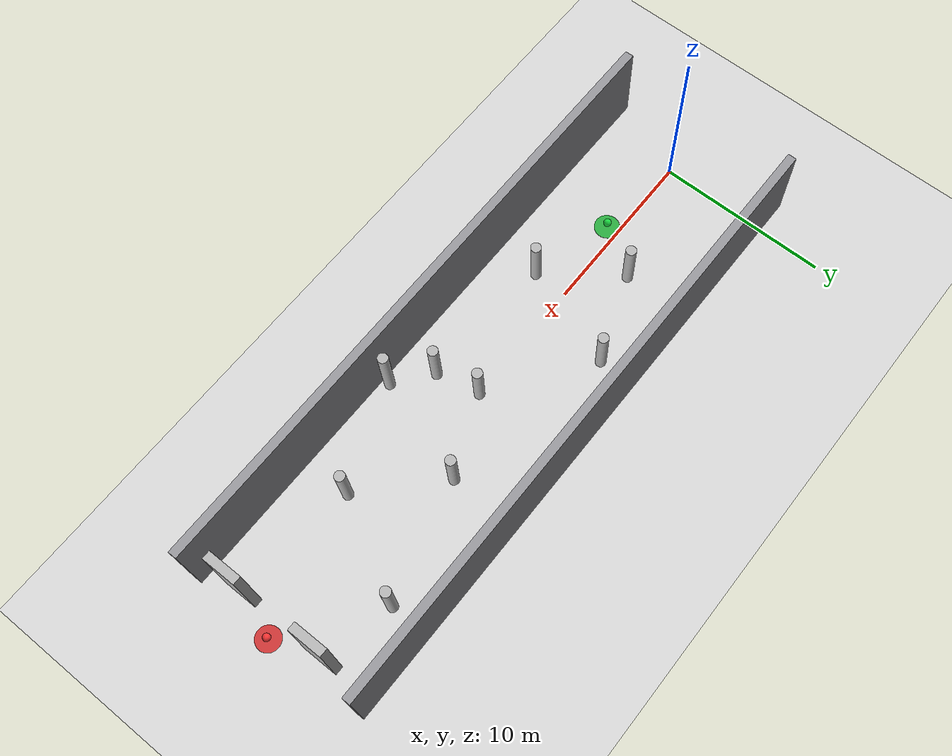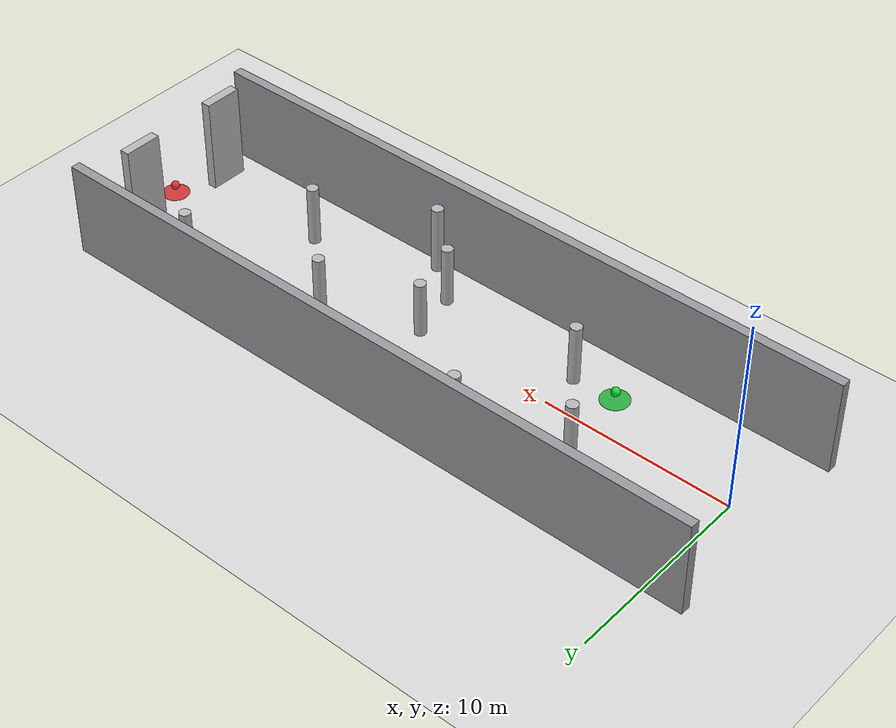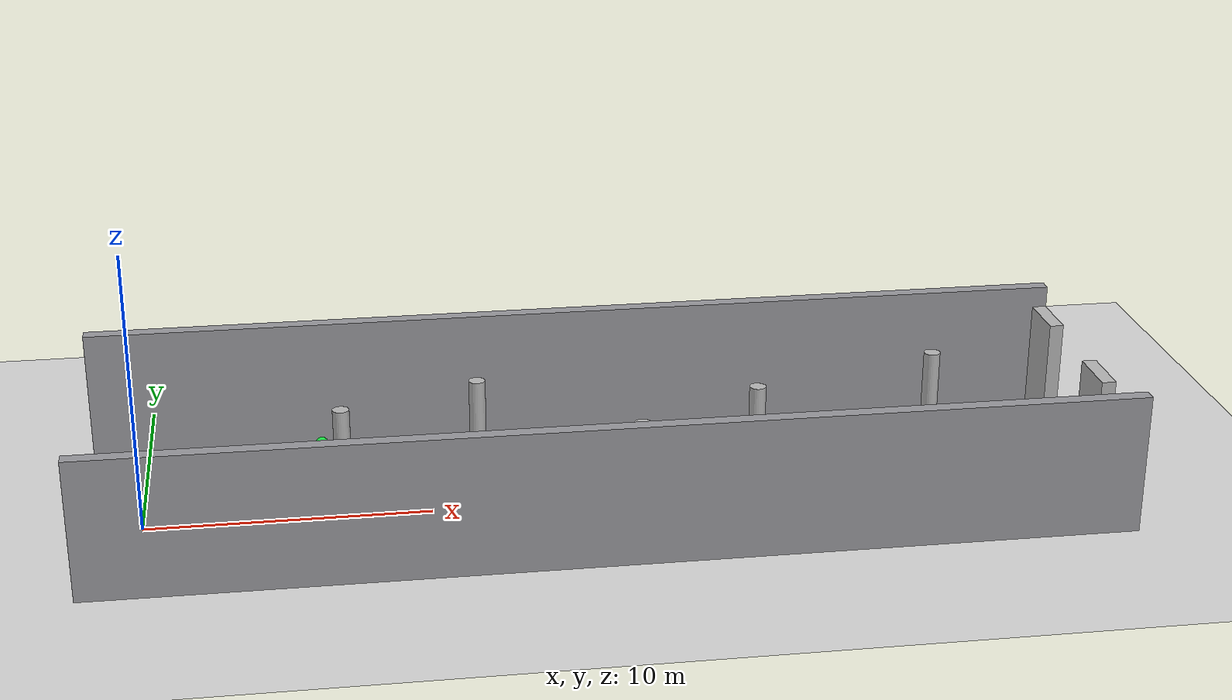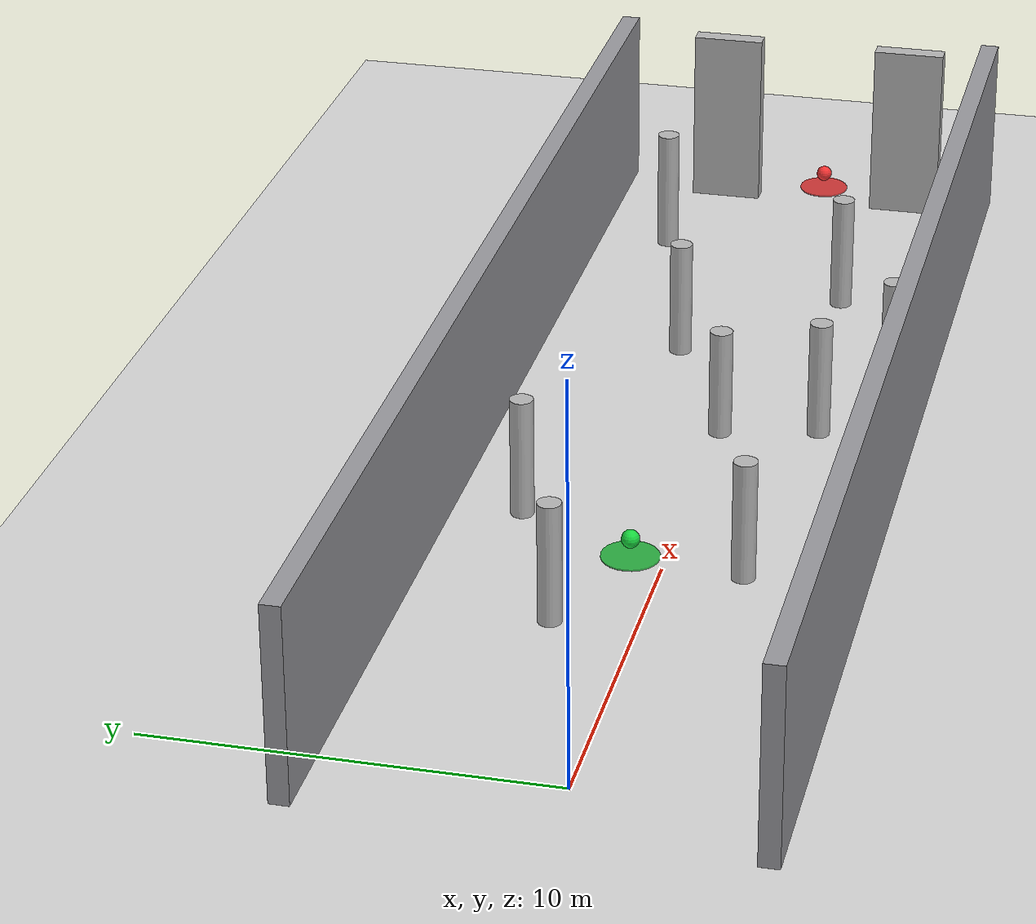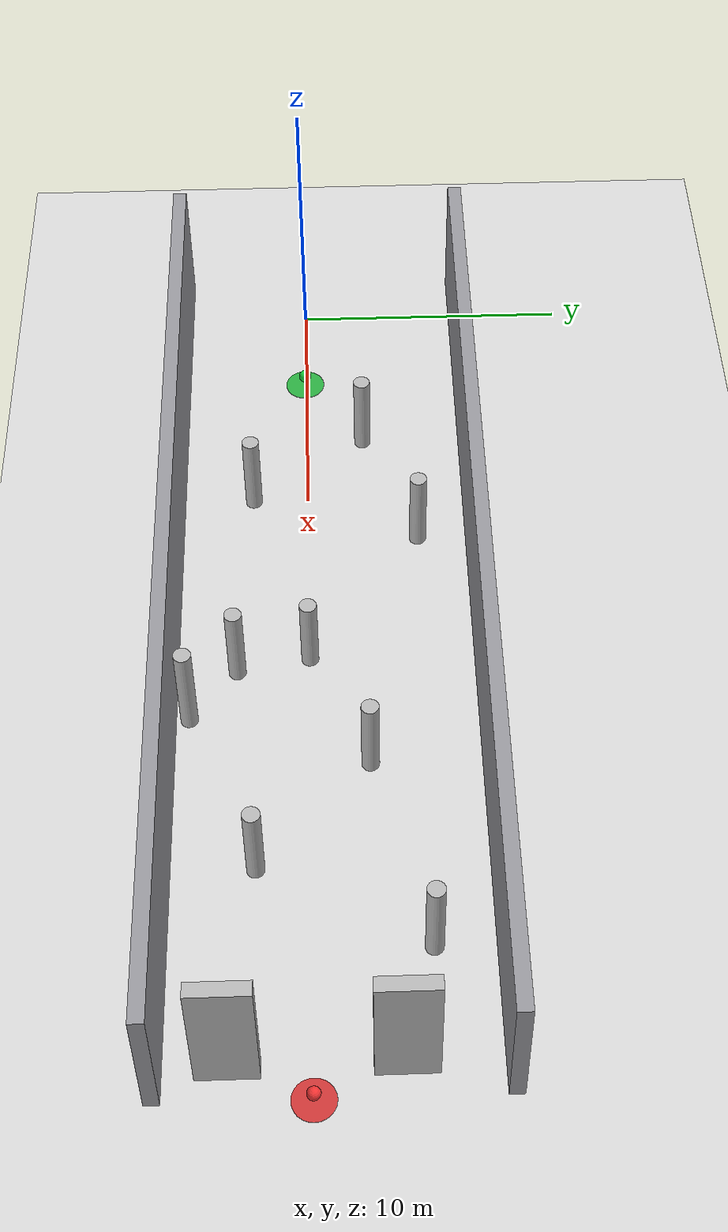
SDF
<sdf version="1.10">
 <world name="obstacle_avoidance">
  <physics type="ode">
   <max_step_size>0.0040000000000000001</max_step_size>
   <real_time_factor>1</real_time_factor>
   <real_time_update_rate>250</real_time_update_rate>
  </physics>
  <plugin name="gz::sim::systems::Physics" filename="gz-sim-physics-system"/>
  <plugin name="gz::sim::systems::UserCommands" filename="gz-sim-user-commands-system"/>
  <plugin name="gz::sim::systems::SceneBroadcaster" filename="gz-sim-scene-broadcaster-system"/>
  <plugin name="gz::sim::systems::Contact" filename="gz-sim-contact-system"/>
  <plugin name="gz::sim::systems::Imu" filename="gz-sim-imu-system"/>
  <plugin name="gz::sim::systems::AirPressure" filename="gz-sim-air-pressure-system"/>
  <plugin name="gz::sim::systems::AirSpeed" filename="gz-sim-air-speed-system"/>
  <plugin name="gz::sim::systems::ApplyLinkWrench" filename="gz-sim-apply-link-wrench-system"/>
  <plugin name="gz::sim::systems::NavSat" filename="gz-sim-navsat-system"/>
  <plugin name="gz::sim::systems::Magnetometer" filename="gz-sim-magnetometer-system"/>
  <plugin name="gz::sim::systems::Sensors" filename="gz-sim-sensors-system">
   <render_engine>ogre2</render_engine>
  </plugin>
  <plugin name="custom::OpticalFlowSystem" filename="libOpticalFlowSystem.so"/>
  <plugin name="custom::GstCameraSystem" filename="libGstCameraSystem.so"/>
  <gravity>0 0 -9.8000000000000007</gravity>
  <magnetic_field>6.0000000000000002e-06 2.3e-05 -4.1999999999999998e-05</magnetic_field>
  <atmosphere type="adiabatic"/>
  <scene>
   <grid>true</grid>
   <ambient>0.449999988 0.449999988 0.449999988 1</ambient>
   <background>0.74000001 0.769999981 0.819999993 1</background>
   <shadows>true</shadows>
  </scene>
  <spherical_coordinates>
   <surface_model>EARTH_WGS84</surface_model>
   <world_frame_orientation>ENU</world_frame_orientation>
   <latitude_deg>47.397971057728974</latitude_deg>
   <longitude_deg>8.5461637398001464</longitude_deg>
   <elevation>0</elevation>
   <heading_deg>0</heading_deg>
  </spherical_coordinates>
  <model name="ground_plane">
   <static>true</static>
   <link name="link">
    <collision name="collision">
     <geometry><plane><normal>0 0 1</normal><size>1 1</size></plane></geometry>
    </collision>
    <visual name="visual">
     <geometry><plane><normal>0 0 1</normal><size>120 120</size></plane></geometry>
     <material>
      <ambient>0.850000024 0.850000024 0.850000024 1</ambient>
      <diffuse>0.850000024 0.850000024 0.850000024 1</diffuse>
      <specular>0.400000006 0.400000006 0.400000006 1</specular>
     </material>
    </visual>
    <inertial>
     <mass>1</mass>
     <inertia><ixx>1</ixx><ixy>0</ixy><ixz>0</ixz><iyy>1</iyy><iyz>0</iyz><izz>1</izz></inertia>
    </inertial>
   </link>
  </model>
  <model name="lane_left_wall">
   <static>false</static>
   <pose>16 6 2.4999873987411871 -1.5452868411422002e-16 1.6520055580100191e-18 3.8614553100829292e-20</pose>
   <link name="link">
    <collision name="collision"><geometry><box><size>36 0.5 5</size></box></geometry></collision>
    <visual name="visual">
     <geometry><box><size>36 0.5 5</size></box></geometry>
     <material>
      <ambient>0.5 0.5 0.519999981 1</ambient>
      <diffuse>0.600000024 0.600000024 0.620000005 1</diffuse>
     </material>
    </visual>
    <inertial>
     <mass>1</mass>
     <inertia><ixx>1</ixx><ixy>0</ixy><ixz>0</ixz><iyy>1</iyy><iyz>0</iyz><izz>1</izz></inertia>
    </inertial>
   </link>
  </model>
  <model name="lane_right_wall">
   <static>false</static>
   <pose>16 -4.7976698875427246 2.4999879531577283 -8.9185550480727362e-17 5.2674483749006176e-18 2.1402072347727736e-19</pose>
   <link name="link">
    <collision name="collision"><geometry><box><size>36 0.5 5</size></box></geometry></collision>
    <visual name="visual">
     <geometry><box><size>36 0.5 5</size></box></geometry>
     <material>
      <ambient>0.5 0.5 0.519999981 1</ambient>
      <diffuse>0.600000024 0.600000024 0.620000005 1</diffuse>
     </material>
    </visual>
    <inertial>
     <mass>1</mass>
     <inertia><ixx>1</ixx><ixy>0</ixy><ixz>0</ixz><iyy>1</iyy><iyz>0</iyz><izz>1</izz></inertia>
    </inertial>
   </link>
  </model>
  <model name="block_01">
   <static>false</static>
   <pose>7 2.1000000000000001 1.5742359786629418 1.2418502679483542e-16 1.4978397059192803e-16 -1.9341801010195976e-18</pose>
   <link name="link">
    <collision name="collision">
     <geometry>
      <cylinder><radius>0.29999999999999999</radius><length>3.2000000000000002</length></cylinder>
     </geometry>
    </collision>
    <visual name="visual">
     <geometry>
      <cylinder><radius>0.29999999999999999</radius><length>3.2000000000000002</length></cylinder>
     </geometry>
    </visual>
    <inertial>
     <mass>1</mass>
     <inertia><ixx>1</ixx><ixy>0</ixy><ixz>0</ixz><iyy>1</iyy><iyz>0</iyz><izz>1</izz></inertia>
    </inertial>
   </link>
  </model>
  <model name="block_02">
   <static>false</static>
   <pose>10 -2 1.5999991336223707 -2.4656638708241914e-17 2.5742117864282655e-17 -1.2283136786083452e-19</pose>
   <link name="link">
    <collision name="collision">
     <geometry>
      <cylinder><radius>0.29999999999999999</radius><length>3.2000000000000002</length></cylinder>
     </geometry>
    </collision>
    <visual name="visual">
     <geometry>
      <cylinder><radius>0.29999999999999999</radius><length>3.2000000000000002</length></cylinder>
     </geometry>
    </visual>
    <inertial>
     <mass>1</mass>
     <inertia><ixx>1</ixx><ixy>0</ixy><ixz>0</ixz><iyy>1</iyy><iyz>0</iyz><izz>1</izz></inertia>
    </inertial>
   </link>
  </model>
  <model name="block_03">
   <static>false</static>
   <pose>17.472225189208984 0.019982300698757172 1.3221730339683528 -1.2945131111436318e-16 1.364627803474331e-16 -1.8262366229722103e-18</pose>
   <link name="link">
    <collision name="collision">
     <geometry>
      <cylinder><radius>0.29999999999999999</radius><length>3.2000000000000002</length></cylinder>
     </geometry>
    </collision>
    <visual name="visual">
     <geometry>
      <cylinder><radius>0.29999999999999999</radius><length>3.2000000000000002</length></cylinder>
     </geometry>
    </visual>
    <inertial>
     <mass>1</mass>
     <inertia><ixx>1</ixx><ixy>0</ixy><ixz>0</ixz><iyy>1</iyy><iyz>0</iyz><izz>1</izz></inertia>
    </inertial>
   </link>
  </model>
  <model name="block_04">
   <static>false</static>
   <pose>18 -2.5 1.574311974546277 -1.3819695418617482e-16 8.7018477944339054e-17 -5.6158996997391654e-19</pose>
   <link name="link">
    <collision name="collision">
     <geometry>
      <cylinder><radius>0.29999999999999999</radius><length>3.2000000000000002</length></cylinder>
     </geometry>
    </collision>
    <visual name="visual">
     <geometry>
      <cylinder><radius>0.29999999999999999</radius><length>3.2000000000000002</length></cylinder>
     </geometry>
    </visual>
    <inertial>
     <mass>1</mass>
     <inertia><ixx>1</ixx><ixy>0</ixy><ixz>0</ixz><iyy>1</iyy><iyz>0</iyz><izz>1</izz></inertia>
    </inertial>
   </link>
  </model>
  <model name="block_05">
   <static>false</static>
   <pose>22 2 1.5999991336223707 4.9828659882484169e-17 4.31275027140564e-17 1.6374324327017893e-19</pose>
   <link name="link">
    <collision name="collision">
     <geometry>
      <cylinder><radius>0.29999999999999999</radius><length>3.2000000000000002</length></cylinder>
     </geometry>
    </collision>
    <visual name="visual">
     <geometry>
      <cylinder><radius>0.29999999999999999</radius><length>3.2000000000000002</length></cylinder>
     </geometry>
    </visual>
    <inertial>
     <mass>1</mass>
     <inertia><ixx>1</ixx><ixy>0</ixy><ixz>0</ixz><iyy>1</iyy><iyz>0</iyz><izz>1</izz></inertia>
    </inertial>
   </link>
  </model>
  <model name="block_06">
   <static>false</static>
   <pose>26 -1.8 1.5743799708629453 -5.313904272723243e-17 1.2326338137367188e-16 3.6247676537834167e-18</pose>
   <link name="link">
    <collision name="collision">
     <geometry>
      <cylinder><radius>0.29999999999999999</radius><length>3.2000000000000002</length></cylinder>
     </geometry>
    </collision>
    <visual name="visual">
     <geometry>
      <cylinder><radius>0.29999999999999999</radius><length>3.2000000000000002</length></cylinder>
     </geometry>
    </visual>
    <inertial>
     <mass>1</mass>
     <inertia><ixx>1</ixx><ixy>0</ixy><ixz>0</ixz><iyy>1</iyy><iyz>0</iyz><izz>1</izz></inertia>
    </inertial>
   </link>
  </model>
  <model name="cyl_01">
   <static>false</static>
   <pose>12 4 1.5999992086633334 2.2687360345456637e-18 4.5657228771581074e-18 -1.896154608907737e-19</pose>
   <link name="link">
    <collision name="collision">
     <geometry>
      <cylinder><radius>0.29999999999999999</radius><length>3.2000000000000002</length></cylinder>
     </geometry>
    </collision>
    <visual name="visual">
     <geometry>
      <cylinder><radius>0.29999999999999999</radius><length>3.2000000000000002</length></cylinder>
     </geometry>
    </visual>
    <inertial>
     <mass>1</mass>
     <inertia><ixx>1</ixx><ixy>0</ixy><ixz>0</ixz><iyy>1</iyy><iyz>0</iyz><izz>1</izz></inertia>
    </inertial>
   </link>
  </model>
  <model name="cyl_02">
   <static>false</static>
   <pose>20 -4.0999999999999996 1.7999992086633334 -5.95015447457351e-18 -7.1830272029298781e-18 8.102279845254366e-20</pose>
   <link name="link">
    <collision name="collision">
     <geometry>
      <cylinder><radius>0.29999999999999999</radius><length>3.6000000000000001</length></cylinder>
     </geometry>
    </collision>
    <visual name="visual">
     <geometry>
      <cylinder><radius>0.29999999999999999</radius><length>3.6000000000000001</length></cylinder>
     </geometry>
    </visual>
    <inertial>
     <mass>1</mass>
     <inertia><ixx>1</ixx><ixy>0</ixy><ixz>0</ixz><iyy>1</iyy><iyz>0</iyz><izz>1</izz></inertia>
    </inertial>
   </link>
  </model>
  <model name="cyl_03">
   <static>false</static>
   <pose>29 3.7999999999999998 1.6999992086633333 2.9183300555717811e-18 3.6794603956307752e-18 6.9962869253696579e-20</pose>
   <link name="link">
    <collision name="collision">
     <geometry>
      <cylinder><radius>0.29999999999999999</radius><length>3.3999999999999999</length></cylinder>
     </geometry>
    </collision>
    <visual name="visual">
     <geometry>
      <cylinder><radius>0.29999999999999999</radius><length>3.3999999999999999</length></cylinder>
     </geometry>
    </visual>
    <inertial>
     <mass>1</mass>
     <inertia><ixx>1</ixx><ixy>0</ixy><ixz>0</ixz><iyy>1</iyy><iyz>0</iyz><izz>1</izz></inertia>
    </inertial>
   </link>
  </model>
  <model name="start_marker">
   <static>true</static>
   <pose>6.2779326438903809 0 2.4097199440002441 0 0 0</pose>
   <link name="link">
    <gravity>false</gravity>
    <kinematic>true</kinematic>
    <visual name="base_ring">
     <geometry>
      <cylinder><radius>0.69999999999999996</radius><length>0.040000000000000001</length></cylinder>
     </geometry>
     <material>
      <ambient>0.100000001 0.699999988 0.200000003 0.850000024</ambient>
      <diffuse>0.100000001 0.699999988 0.200000003 0.850000024</diffuse>
      <specular>0.200000003 0.200000003 0.200000003 1</specular>
     </material>
    </visual>
    <visual name="center_sphere">
     <pose>0 0 0.45000000000000001 0 0 0</pose>
     <geometry><sphere><radius>0.22</radius></sphere></geometry>
     <material>
      <ambient>0.100000001 0.850000024 0.25 1</ambient>
      <diffuse>0.100000001 0.850000024 0.25 1</diffuse>
      <specular>0.300000012 0.300000012 0.300000012 1</specular>
     </material>
    </visual>
    <inertial>
     <mass>1</mass>
     <inertia><ixx>1</ixx><ixy>0</ixy><ixz>0</ixz><iyy>1</iyy><iyz>0</iyz><izz>1</izz></inertia>
    </inertial>
   </link>
  </model>
  <model name="goal_marker">
   <static>true</static>
   <pose>34 0 0.02 0 0 0</pose>
   <link name="link">
    <gravity>false</gravity>
    <kinematic>true</kinematic>
    <visual name="base_ring">
     <geometry>
      <cylinder><radius>0.69999999999999996</radius><length>0.040000000000000001</length></cylinder>
     </geometry>
     <material>
      <ambient>0.850000024 0.150000006 0.150000006 0.850000024</ambient>
      <diffuse>0.850000024 0.150000006 0.150000006 0.850000024</diffuse>
      <specular>0.200000003 0.200000003 0.200000003 1</specular>
     </material>
    </visual>
    <visual name="center_sphere">
     <pose>0 0 0.45000000000000001 0 0 0</pose>
     <geometry><sphere><radius>0.22</radius></sphere></geometry>
     <material>
      <ambient>0.949999988 0.200000003 0.200000003 1</ambient>
      <diffuse>0.949999988 0.200000003 0.200000003 1</diffuse>
      <specular>0.300000012 0.300000012 0.300000012 1</specular>
     </material>
    </visual>
    <inertial>
     <mass>1</mass>
     <inertia><ixx>1</ixx><ixy>0</ixy><ixz>0</ixz><iyy>1</iyy><iyz>0</iyz><izz>1</izz></inertia>
    </inertial>
   </link>
  </model>
  <model name="goal_gate_left">
   <static>false</static>
   <pose>33 2.793034553527832 2.4999999991915036 -1.484992427854716e-20 -2.1512123182014012e-20 -3.9454630471100238e-21</pose>
   <link name="link">
    <collision name="collision"><geometry><box><size>0.5 2 5</size></box></geometry></collision>
    <visual name="visual"><geometry><box><size>0.5 2 5</size></box></geometry></visual>
    <inertial>
     <mass>1</mass>
     <inertia><ixx>1</ixx><ixy>0</ixy><ixz>0</ixz><iyy>1</iyy><iyz>0</iyz><izz>1</izz></inertia>
    </inertial>
   </link>
  </model>
  <model name="goal_gate_right">
   <static>false</static>
   <pose>33 -2.5757162570953369 2.4999999991915041 -2.7423288038337208e-20 6.4777144866751849e-20 -2.7997424709023121e-21</pose>
   <link name="link">
    <collision name="collision"><geometry><box><size>0.5 2 5</size></box></geometry></collision>
    <visual name="visual"><geometry><box><size>0.5 2 5</size></box></geometry></visual>
    <inertial>
     <mass>1</mass>
     <inertia><ixx>1</ixx><ixy>0</ixy><ixz>0</ixz><iyy>1</iyy><iyz>0</iyz><izz>1</izz></inertia>
    </inertial>
   </link>
  </model>
  <light name="sunUTC" type="directional">
   <pose>0 0 500 0 0 0</pose>
   <intensity>1</intensity>
   <direction>0.001 0.625 -0.78000000000000003</direction>
   <diffuse>0.899999976 0.899999976 0.899999976 1</diffuse>
   <specular>0.25 0.25 0.25 1</specular>
   <attenuation><range>2000</range><linear>0</linear><constant>1</constant><quadratic>0</quadratic></attenuation>
   <spot><inner_angle>0</inner_angle><outer_angle>0</outer_angle><falloff>0</falloff></spot>
  </light>
 </world>
</sdf>
